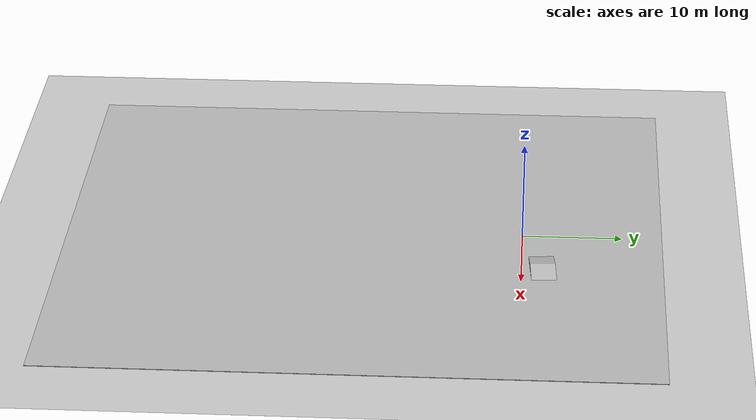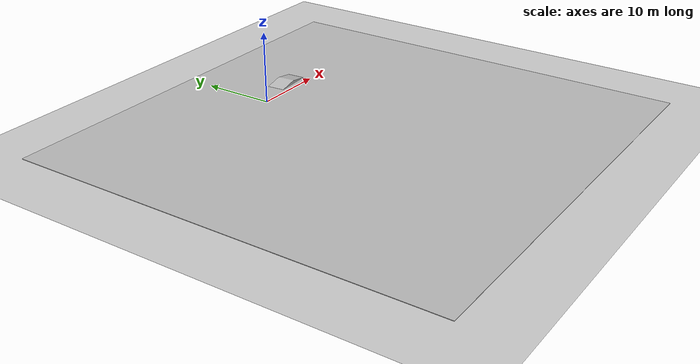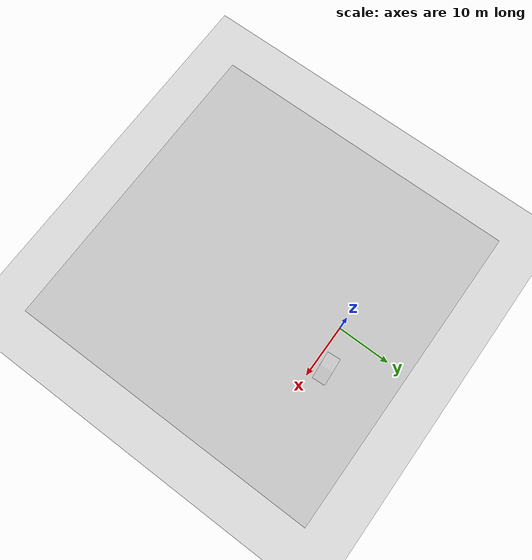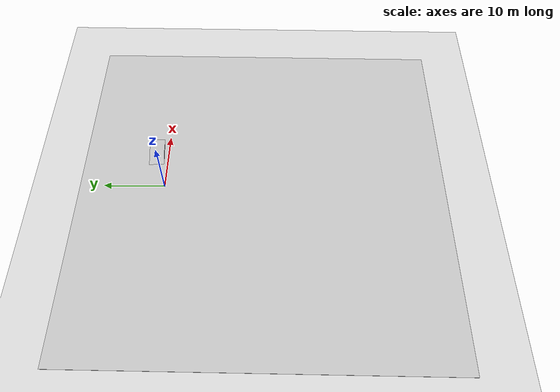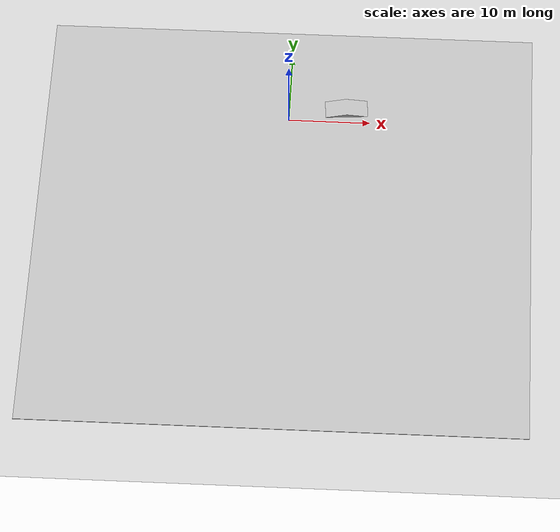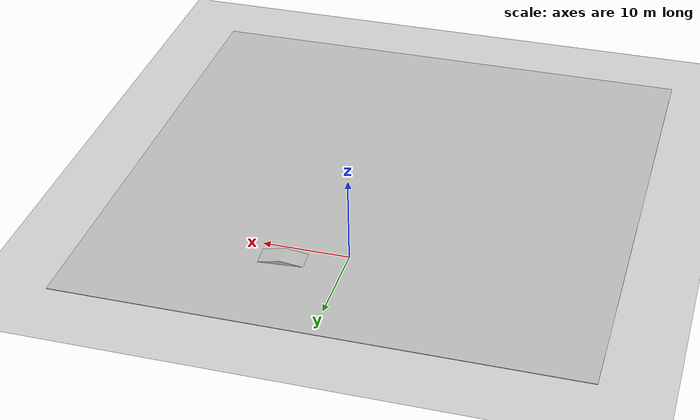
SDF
<sdf version="1.7">
 <world name="default">
  <model name="Ground Plane">
   <static>1</static>
   <link name="link">
    <collision name="collision">
     <geometry><plane><normal>0 0 1</normal><size>100 100</size></plane></geometry>
     <surface><friction><ode><mu>100</mu><mu2>50</mu2></ode></friction></surface>
    </collision>
    <visual name="visual">
     <cast_shadows>0</cast_shadows>
     <geometry><plane><normal>0 0 1</normal><size>100 100</size></plane></geometry>
     <material>
      <script><uri>file://media/materials/scripts/gazebo.material</uri><name>Gazebo/Grey</name></script>
     </material>
    </visual>
   </link>
  </model>
  <model name="IGVC Track">
   <static>1</static>
   <link name="link">
    <collision name="collision"><geometry><box><size>60 60 0.05</size></box></geometry></collision>
    <visual name="visual">
     <cast_shadows>0</cast_shadows>
     <geometry><box><size>60 60 0.05</size></box></geometry>
     <material>
      <script>
       <uri>model://igvc_track/materials/scripts</uri>
       <uri>model://igvc_track/materials/textures</uri>
       <name>vrc/ground</name>
      </script>
     </material>
    </visual>
   </link>
   <link name="link2">
    <collision name="collision"><geometry><box><size>60 60 0.05</size></box></geometry></collision>
    <visual name="visual">
     <cast_shadows>0</cast_shadows>
     <geometry><box><size>60 60 0.07</size></box></geometry>
     <material>
      <script>
       <uri>model://igvc_track/materials/scripts</uri>
       <uri>model://igvc_track/materials/textures</uri>
       <name>vrc/track</name>
      </script>
     </material>
    </visual>
   </link>
   <pose>0 -16 0 0 -0 0</pose>
  </model>
  <model name="Ramp">
   <static>1</static>
   <link name="link">
    <collision name="collision">
     <geometry><mesh><uri>model://ramp/meshes/ramp.dae</uri><scale>1 1 1</scale></mesh></geometry>
     <surface><friction><ode><mu>100</mu><mu2>50</mu2></ode></friction></surface>
    </collision>
    <visual name="visual">
     <geometry><mesh><uri>model://ramp/meshes/ramp.dae</uri><scale>1 1 1</scale></mesh></geometry>
    </visual>
   </link>
   <pose>7.04069 2.08045 0 0 0 -3.0708</pose>
  </model>
 </world>
</sdf>
